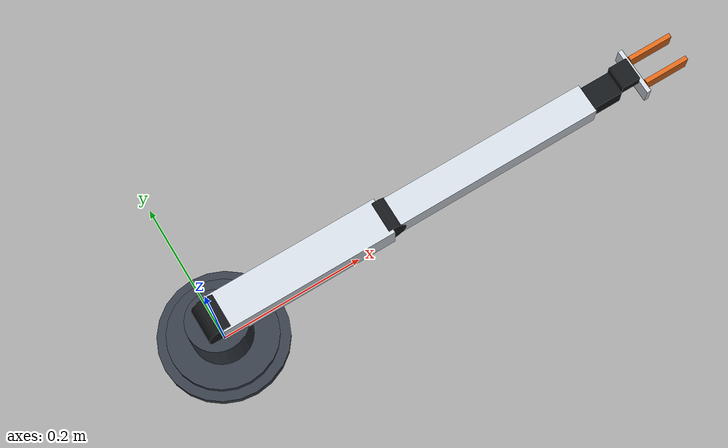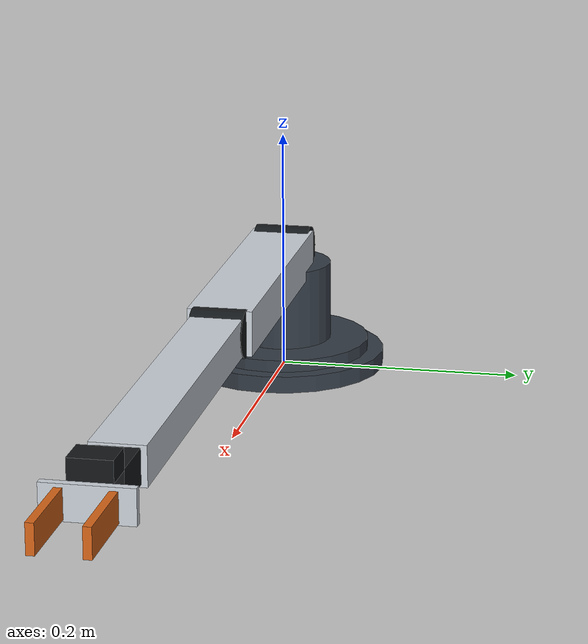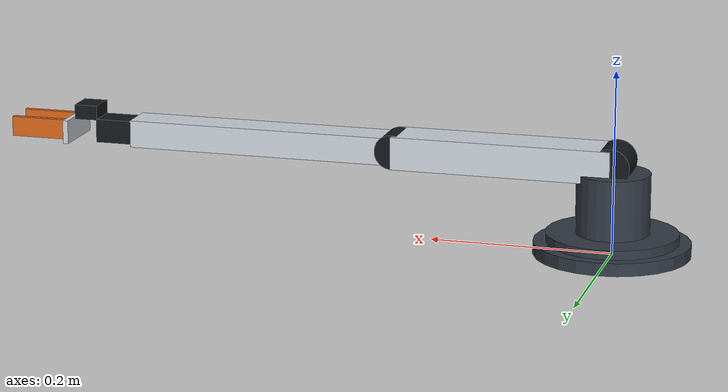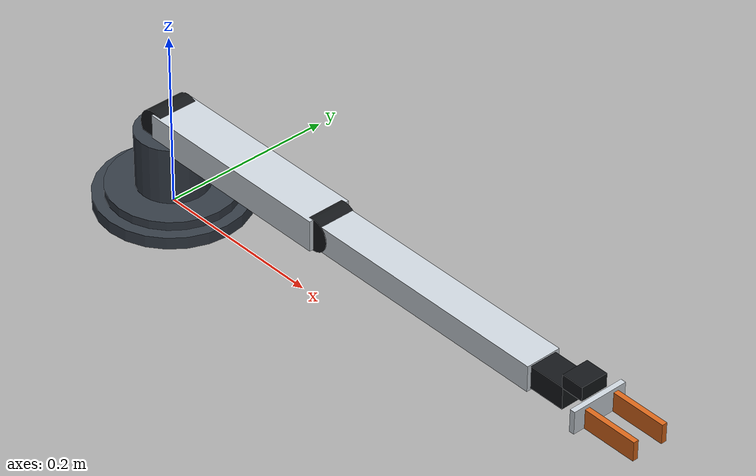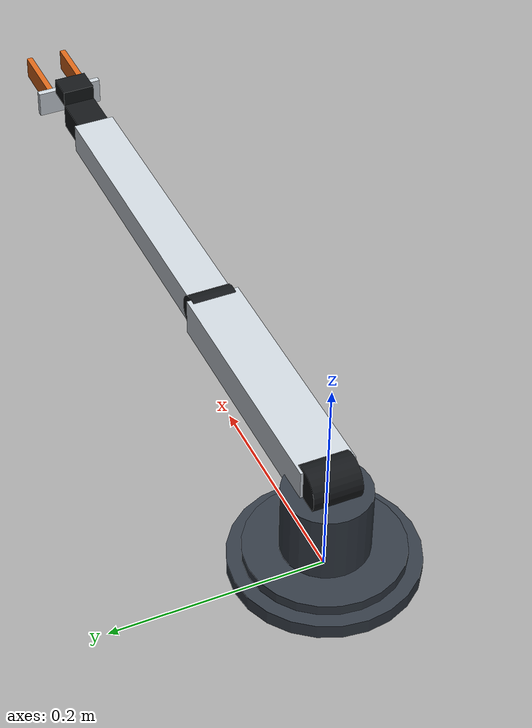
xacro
<?xml version="1.0"?>
<robot xmlns:xacro="http://www.ros.org/wiki/xacro" name="satranc_robotu">
  <xacro:arg name="sim" default="gz"/>
  <xacro:property name="sim" value="$(arg sim)"/>

  <xacro:arg name="style" default="alu"/>
  <xacro:property name="pink" value="${'$(arg style)' == 'pink'}"/>
  <xacro:property name="upper_w" value="${0.054 if pink else 0.051}"/>
  <xacro:property name="upper_h" value="${0.050 if pink else 0.036}"/>
  <xacro:property name="fore_r" value="0.023"/>
  <xacro:property name="PI" value="3.14159265"/>
  <xacro:property name="L1" value="0.10"/>
  <xacro:property name="L2" value="0.24"/>
  <xacro:property name="L3" value="0.30"/>
  <xacro:property name="L4" value="0.14"/>
  <xacro:property name="base_r" value="0.085"/>
  <xacro:property name="base_h" value="0.014"/>
  <xacro:property name="link_kg_m" value="${0.66 if pink else 0.31}"/>   <!-- 2,5 g/cm kol + 0,6 g/cm kablo -->
  <xacro:property name="m_elbow_servo" value="0.060"/>  <!-- DS3218 -->
  <xacro:property name="m_wrist_servo" value="0.055"/>  <!-- MG996R -->
  <xacro:property name="m_roll_servo" value="0.0134"/>  <!-- MG90S -->
  <xacro:property name="m_gripper" value="${0.0734 if pink else 0.0484}"/>     <!-- 35 g gövde + MG90S -->
  <xacro:property name="wrist_len" value="0.042"/>      <!-- bilek ekseni → dönüş ekseni -->
  <xacro:property name="tcp" value="${L4 - wrist_len}"/> <!-- dönüş ekseni → parmak ucu -->

  <!-- Eklem tork sınırları, N·m (6 V durma torku) -->
  <xacro:property name="eff_j1" value="1.08"/>   <!-- MG996R 11 kg·cm -->
  <xacro:property name="eff_j2" value="3.14"/>   <!-- DS3235 32 kg·cm -->
  <xacro:property name="eff_j3" value="2.01"/>   <!-- DS3218 20,5 kg·cm -->
  <xacro:property name="eff_j4" value="1.08"/>   <!-- MG996R -->
  <xacro:property name="eff_j5" value="0.216"/>  <!-- MG90S 2,2 kg·cm -->

  <xacro:macro name="box_inertial" params="m x y z ox">
    <inertial>
      <origin xyz="${ox} 0 0"/>
      <mass value="${m}"/>
      <inertia ixx="${m*(y*y+z*z)/12}" ixy="0" ixz="0" iyy="${m*(x*x+z*z)/12}" iyz="0" izz="${m*(x*x+y*y)/12}"/>
    </inertial>
  </xacro:macro>

  <material name="govde"><color rgba="0.20 0.23 0.27 1"/></material>
  <material name="aluminyum"><color rgba="${'0.91 0.28 0.55 1' if pink else '0.80 0.83 0.86 1'}"/></material>
  <material name="servo"><color rgba="0.08 0.09 0.10 1"/></material>
  <material name="turuncu"><color rgba="0.85 0.40 0.10 1"/></material>

  <!-- Masaya sabit taban -->
  <link name="world"/>
  <joint name="world_fixed" type="fixed">
    <parent link="world"/>
    <child link="base_link"/>
  </joint>

  <link name="base_link">
    <visual>
      <origin xyz="0 0 ${base_h/2}"/>
      <geometry><cylinder radius="${base_r}" length="${base_h}"/></geometry>
      <material name="govde"/>
    </visual>
    <collision>
      <origin xyz="0 0 ${base_h/2}"/>
      <geometry><cylinder radius="${base_r}" length="${base_h}"/></geometry>
    </collision>
    <inertial>
      <origin xyz="0 0 ${base_h/2}"/>
      <mass value="1.0"/>
      <inertia ixx="0.002" ixy="0" ixz="0" iyy="0.002" iyz="0" izz="0.0036"/>
    </inertial>
  </link>

  <!-- J1 taban dönüşü -->
  <joint name="joint1" type="revolute">
    <parent link="base_link"/>
    <child link="turntable"/>
    <origin xyz="0 0 ${base_h}"/>
    <axis xyz="0 0 1"/>
    <limit lower="${-PI/2}" upper="${PI/2}" effort="${eff_j1}" velocity="7.48"/>
    <dynamics damping="0.05" friction="0.01"/>
  </joint>

  <link name="turntable">
    <xacro:if value="${pink}">
      <visual><origin xyz="0 0 0.04"/><geometry><box size="0.058 0.062 0.060"/></geometry><material name="aluminyum"/></visual>
      <collision><origin xyz="0 0 0.04"/><geometry><box size="0.058 0.062 0.060"/></geometry></collision>
    </xacro:if>
    <visual>
      <origin xyz="0 0 0.005"/>
      <geometry><cylinder radius="0.072" length="0.01"/></geometry>
      <material name="govde"/>
    </visual>
    <visual>
      <origin xyz="0 0 ${(L1 - base_h)/2}"/>
      <geometry><cylinder radius="0.04" length="${L1 - base_h - 0.02}"/></geometry>
      <material name="govde"/>
    </visual>
    <collision>
      <origin xyz="0 0 ${(L1 - base_h)/2}"/>
      <geometry><cylinder radius="0.04" length="${L1 - base_h - 0.02}"/></geometry>
    </collision>
    <inertial>
      <origin xyz="0 0 0.03"/>
      <mass value="0.25"/>
      <inertia ixx="0.0002" ixy="0" ixz="0" iyy="0.0002" iyz="0" izz="0.0002"/>
    </inertial>
  </link>

  <!-- J2 omuz: yataydan yukarı pozitif -->
  <joint name="joint2" type="revolute">
    <parent link="turntable"/>
    <child link="upper_arm"/>
    <origin xyz="0 0 ${L1 - base_h}"/>
    <axis xyz="0 -1 0"/>
    <limit lower="0" upper="${PI}" effort="${eff_j2}" velocity="6.98"/>
    <dynamics damping="0.05" friction="0.02"/>
  </joint>

  <link name="upper_arm">
    <visual>
      <origin xyz="${L2/2} 0 0"/>
      <geometry><box size="${L2} ${upper_w} ${upper_h}"/></geometry>
      <material name="aluminyum"/>
    </visual>
    <visual>
      <origin xyz="0 0 0" rpy="${PI/2} 0 0"/>
      <geometry><cylinder radius="0.021" length="0.046"/></geometry>
      <material name="servo"/>
    </visual>
    <collision>
      <origin xyz="${L2/2} 0 0"/>
      <geometry><box size="${L2} ${upper_w} ${upper_h}"/></geometry>
    </collision>
    <xacro:box_inertial m="${link_kg_m*L2 + m_elbow_servo}" x="${L2}" y="${upper_w}" z="${upper_h}"
      ox="${(link_kg_m*L2*L2/2 + m_elbow_servo*L2)/(link_kg_m*L2 + m_elbow_servo)}"/>
  </link>

  <!-- J3 dirsek: üst kola göre, aşağı negatif -->
  <joint name="joint3" type="revolute">
    <parent link="upper_arm"/>
    <child link="forearm"/>
    <origin xyz="${L2} 0 0"/>
    <axis xyz="0 -1 0"/>
    <limit lower="${-PI}" upper="0" effort="${eff_j3}" velocity="7.48"/>
    <dynamics damping="0.05" friction="0.02"/>
  </joint>

  <link name="forearm">
    <visual>
      <origin xyz="${L3/2} 0 0" rpy="0 ${PI/2 if pink else 0} 0"/>
      <geometry>
        <xacro:if value="${pink}"><cylinder radius="${fore_r}" length="${L3}"/></xacro:if>
        <xacro:unless value="${pink}"><box size="${L3} 0.041 0.030"/></xacro:unless>
      </geometry>
      <material name="aluminyum"/>
    </visual>
    <visual>
      <origin xyz="0 0 0" rpy="${PI/2} 0 0"/>
      <geometry><cylinder radius="0.019" length="0.042"/></geometry>
      <material name="servo"/>
    </visual>
    <collision>
      <origin xyz="${L3/2} 0 0" rpy="0 ${PI/2 if pink else 0} 0"/>
      <geometry>
        <xacro:if value="${pink}"><cylinder radius="${fore_r}" length="${L3}"/></xacro:if>
        <xacro:unless value="${pink}"><box size="${L3} 0.041 0.030"/></xacro:unless>
      </geometry>
    </collision>
    <xacro:box_inertial m="${link_kg_m*L3 + m_wrist_servo}" x="${L3}" y="${2*fore_r if pink else 0.041}" z="${2*fore_r if pink else 0.030}"
      ox="${(link_kg_m*L3*L3/2 + m_wrist_servo*L3)/(link_kg_m*L3 + m_wrist_servo)}"/>
  </link>

  <!-- J4 bilek eğimi: ön kola göre -->
  <joint name="joint4" type="revolute">
    <parent link="forearm"/>
    <child link="wrist"/>
    <origin xyz="${L3} 0 0"/>
    <axis xyz="0 -1 0"/>
    <limit lower="${-PI}" upper="0" effort="${eff_j4}" velocity="7.48"/>
    <dynamics damping="0.03" friction="0.01"/>
  </joint>

  <link name="wrist">
    <visual>
      <origin xyz="${wrist_len/2} 0 0"/>
      <geometry><box size="${wrist_len} 0.032 0.026"/></geometry>
      <material name="servo"/>
    </visual>
    <collision>
      <origin xyz="${wrist_len/2} 0 0"/>
      <geometry><box size="${wrist_len} 0.032 0.026"/></geometry>
    </collision>
    <xacro:box_inertial m="${m_roll_servo}" x="${wrist_len}" y="0.03" z="0.026" ox="${wrist_len/2}"/>
  </link>

  <!-- J5 bilek dönüşü: tutucu ekseni etrafında -->
  <joint name="joint5" type="revolute">
    <parent link="wrist"/>
    <child link="gripper"/>
    <origin xyz="${wrist_len} 0 0"/>
    <axis xyz="1 0 0"/>
    <limit lower="${-PI/2}" upper="${PI/2}" effort="${eff_j5}" velocity="13.1"/>
    <dynamics damping="0.01" friction="0.005"/>
  </joint>

  <link name="gripper">
    <visual>
      <origin xyz="0.03 0 0"/>
      <geometry><box size="0.006 0.066 0.026"/></geometry>
      <material name="aluminyum"/>
    </visual>
    <visual>
      <origin xyz="0.012 0 0.02"/>
      <geometry><box size="0.026 0.032 0.016"/></geometry>
      <material name="servo"/>
    </visual>
    <collision>
      <origin xyz="0.03 0 0"/>
      <geometry><box size="0.006 0.066 0.026"/></geometry>
    </collision>
    <xacro:box_inertial m="${m_gripper}" x="0.04" y="0.066" z="0.026" ox="0.02"/>
  </link>

  <!-- Paralel parmaklar: eklem değeri = merkezden parmağın iç yüzüne uzaklık -->
  <xacro:macro name="finger" params="side sign">
    <joint name="finger_${side}_joint" type="prismatic">
      <parent link="gripper"/>
      <child link="finger_${side}"/>
      <origin xyz="${0.035 + (tcp - 0.035)/2} 0 0"/>
      <axis xyz="0 ${sign} 0"/>
      <limit lower="0.006" upper="0.025" effort="8.6" velocity="0.05"/>
      <dynamics damping="0.5" friction="0.1"/>
    </joint>
    <link name="finger_${side}">
      <visual>
        <origin xyz="0 ${sign*0.003} 0"/>
        <geometry><box size="${tcp - 0.035} 0.006 0.022"/></geometry>
        <material name="turuncu"/>
      </visual>
      <collision>
        <origin xyz="0 ${sign*0.003} 0"/>
        <geometry><box size="${tcp - 0.035} 0.006 0.022"/></geometry>
      </collision>
      <inertial>
        <mass value="0.005"/>
        <inertia ixx="2e-7" ixy="0" ixz="0" iyy="2e-6" iyz="0" izz="2e-6"/>
      </inertial>
    </link>
    <gazebo reference="finger_${side}">
      <mu1>2.0</mu1>
      <mu2>2.0</mu2>
      <kp>100000</kp>
      <kd>10</kd>
      <minDepth>0.0005</minDepth>
    </gazebo>
  </xacro:macro>
  <xacro:finger side="left" sign="1"/>
  <xacro:finger side="right" sign="-1"/>

  <!-- Parmak ucu (ters kinematiğin hedeflediği nokta) -->
  <link name="tcp"/>
  <joint name="tcp_fixed" type="fixed">
    <parent link="gripper"/>
    <child link="tcp"/>
    <origin xyz="${tcp} 0 0"/>
  </joint>

  <!-- ros2_control: başlangıç değerleri = ev duruşu (servo 90° / 96,3° / 102,1° / 115,8° / 45°) -->
  <xacro:macro name="ctrl_joint" params="name lo hi init">
    <joint name="${name}">
      <command_interface name="position">
        <param name="min">${lo}</param>
        <param name="max">${hi}</param>
      </command_interface>
      <state_interface name="position"><param name="initial_value">${init}</param></state_interface>
      <state_interface name="velocity"/>
    </joint>
  </xacro:macro>

  <ros2_control name="SatrancRobotu" type="system">
    <hardware>
      <xacro:if value="${sim == 'gz'}">
        <plugin>gz_ros2_control/GazeboSimSystem</plugin>
      </xacro:if>
      <xacro:unless value="${sim == 'gz'}">
        <plugin>mock_components/GenericSystem</plugin>
      </xacro:unless>
    </hardware>
    <xacro:ctrl_joint name="joint1" lo="${-PI/2}" hi="${PI/2}" init="0.0"/>
    <xacro:ctrl_joint name="joint2" lo="0" hi="${PI}" init="1.681"/>
    <xacro:ctrl_joint name="joint3" lo="${-PI}" hi="0" init="-1.782"/>
    <xacro:ctrl_joint name="joint4" lo="${-PI}" hi="0" init="-1.121"/>
    <xacro:ctrl_joint name="joint5" lo="${-PI/2}" hi="${PI/2}" init="-0.785"/>
    <xacro:ctrl_joint name="finger_left_joint" lo="0.006" hi="0.025" init="0.02"/>
    <xacro:ctrl_joint name="finger_right_joint" lo="0.006" hi="0.025" init="0.02"/>
  </ros2_control>

  <xacro:if value="${sim == 'gz'}">
    <gazebo>
      <plugin filename="gz_ros2_control-system" name="gz_ros2_control::GazeboSimROS2ControlPlugin">
        <parameters>$(find satranc_robotu)/config/controllers.yaml</parameters>
      </plugin>
    </gazebo>
  </xacro:if>
</robot>
